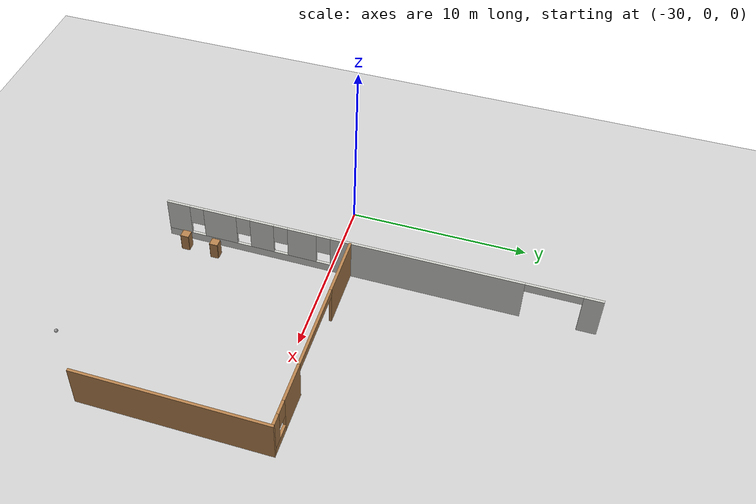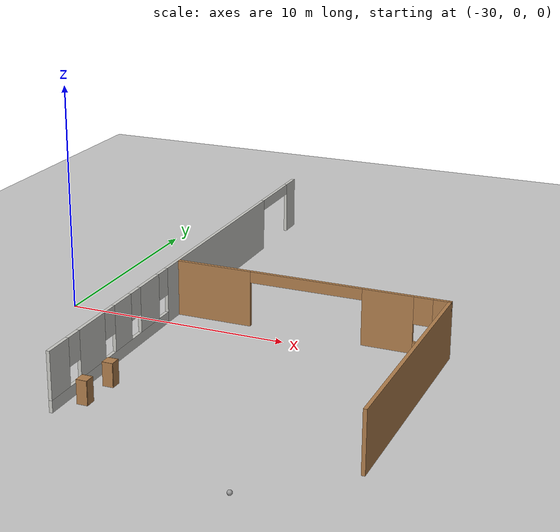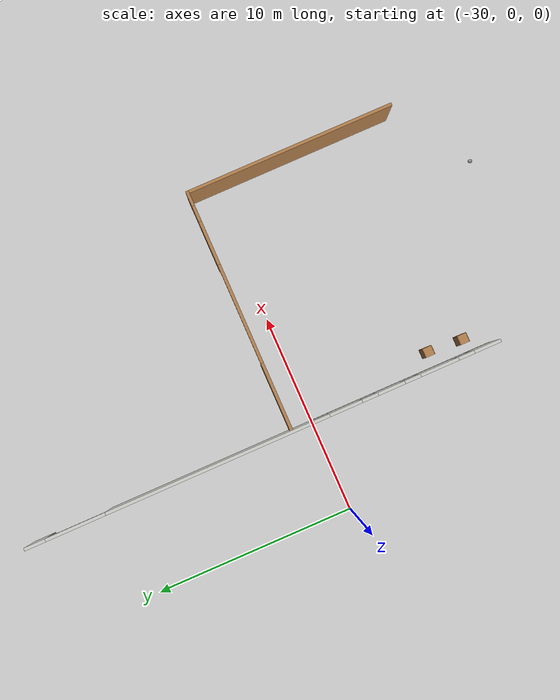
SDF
<sdf version="1.6">
 <world name="default">
  <model name="ground_plane">
   <static>1</static>
   <link name="link">
    <collision name="collision">
     <geometry><plane><normal>0 0 1</normal><size>100 100</size></plane></geometry>
     <surface>
      <contact><collide_bitmask>65535</collide_bitmask></contact>
      <friction><ode><mu>100</mu><mu2>50</mu2></ode></friction>
     </surface>
    </collision>
    <visual name="visual">
     <cast_shadows>0</cast_shadows>
     <geometry><plane><normal>0 0 1</normal><size>100 100</size></plane></geometry>
     <material>
      <script><uri>file://media/materials/scripts/gazebo.material</uri><name>Gazebo/Grey</name></script>
     </material>
    </visual>
   </link>
  </model>
  <model name="bigHouse">
   <pose>-26.8831 -3.8622 0 0 -0 0</pose>
   <link name="Wall_10">
    <pose>7.59462 4.97423 0 0 -0 0</pose>
    <visual name="Wall_10_Visual_0">
     <pose>-4.3849 0 1.25 0 -0 0</pose>
     <geometry><box><size>3.48019 0.15 2.5</size></box></geometry>
     <material>
      <script><uri>file://media/materials/scripts/gazebo.material</uri><name>Gazebo/Wood</name></script>
      <ambient>1 1 1 1</ambient>
     </material>
     <meta><layer>0</layer></meta>
    </visual>
    <collision name="Wall_10_Collision_0">
     <geometry><box><size>3.48019 0.15 2.5</size></box></geometry>
     <pose>-4.3849 0 1.25 0 -0 0</pose>
    </collision>
    <visual name="Wall_10_Visual_1">
     <pose>3.45765 0 1.25 0 -0 0</pose>
     <geometry><box><size>2.20491 0.15 2.5</size></box></geometry>
     <material>
      <script><uri>file://media/materials/scripts/gazebo.material</uri><name>Gazebo/Wood</name></script>
      <ambient>1 1 1 1</ambient>
     </material>
     <meta><layer>0</layer></meta>
    </visual>
    <collision name="Wall_10_Collision_1">
     <geometry><box><size>2.20491 0.15 2.5</size></box></geometry>
     <pose>3.45765 0 1.25 0 -0 0</pose>
    </collision>
    <visual name="Wall_10_Visual_2">
     <pose>5.34255 0 0.25 0 -0 0</pose>
     <geometry><box><size>1.56489 0.15 0.5</size></box></geometry>
     <material>
      <script><uri>file://media/materials/scripts/gazebo.material</uri><name>Gazebo/Wood</name></script>
      <ambient>1 1 1 1</ambient>
     </material>
     <meta><layer>0</layer></meta>
    </visual>
    <collision name="Wall_10_Collision_2">
     <geometry><box><size>1.56489 0.15 0.5</size></box></geometry>
     <pose>5.34255 0 0.25 0 -0 0</pose>
    </collision>
    <visual name="Wall_10_Visual_3">
     <pose>5.74255 0 1.5 0 -0 0</pose>
     <geometry><box><size>0.764895 0.15 2</size></box></geometry>
     <material>
      <script><uri>file://media/materials/scripts/gazebo.material</uri><name>Gazebo/Wood</name></script>
      <ambient>1 1 1 1</ambient>
     </material>
     <meta><layer>0</layer></meta>
    </visual>
    <collision name="Wall_10_Collision_3">
     <geometry><box><size>0.764895 0.15 2</size></box></geometry>
     <pose>5.74255 0 1.5 0 -0 0</pose>
    </collision>
    <visual name="Wall_10_Visual_4">
     <pose>4.96011 0 1.9 0 -0 0</pose>
     <geometry><box><size>0.8 0.15 1.2</size></box></geometry>
     <material>
      <script><uri>file://media/materials/scripts/gazebo.material</uri><name>Gazebo/Wood</name></script>
      <ambient>1 1 1 1</ambient>
     </material>
     <meta><layer>0</layer></meta>
    </visual>
    <collision name="Wall_10_Collision_4">
     <geometry><box><size>0.8 0.15 1.2</size></box></geometry>
     <pose>4.96011 0 1.9 0 -0 0</pose>
    </collision>
    <visual name="Wall_10_Visual_5">
     <pose>-0.144808 0 2.25 0 -0 0</pose>
     <geometry><box><size>5 0.15 0.5</size></box></geometry>
     <material>
      <script><uri>file://media/materials/scripts/gazebo.material</uri><name>Gazebo/Wood</name></script>
      <ambient>1 1 1 1</ambient>
     </material>
     <meta><layer>0</layer></meta>
    </visual>
    <collision name="Wall_10_Collision_5">
     <geometry><box><size>5 0.15 0.5</size></box></geometry>
     <pose>-0.144808 0 2.25 0 -0 0</pose>
    </collision>
   </link>
   <link name="Wall_11">
    <collision name="Wall_11_Collision">
     <geometry><box><size>10.5 0.15 2.5</size></box></geometry>
     <pose>0 0 1.25 0 -0 0</pose>
    </collision>
    <visual name="Wall_11_Visual">
     <pose>0 0 1.25 0 -0 0</pose>
     <geometry><box><size>10.5 0.15 2.5</size></box></geometry>
     <material>
      <script><uri>file://media/materials/scripts/gazebo.material</uri><name>Gazebo/Wood</name></script>
      <ambient>1 1 1 1</ambient>
     </material>
     <meta><layer>0</layer></meta>
    </visual>
    <pose>13.6446 -0.200766 0 0 0 -1.5708</pose>
   </link>
   <link name="Wall_5">
    <pose>1.4822 6.41248 0 0 0 -1.5708</pose>
    <visual name="Wall_5_Visual_0">
     <pose>-11.473 0 1.25 0 -0 0</pose>
     <geometry><box><size>1.05401 0.15 2.5</size></box></geometry>
     <material>
      <script><uri>file://media/materials/scripts/gazebo.material</uri><name>Gazebo/CeilingTiled</name></script>
      <ambient>1 1 1 1</ambient>
     </material>
     <meta><layer>0</layer></meta>
    </visual>
    <collision name="Wall_5_Collision_0">
     <geometry><box><size>1.05401 0.15 2.5</size></box></geometry>
     <pose>-11.473 0 1.25 0 -0 0</pose>
    </collision>
    <visual name="Wall_5_Visual_1">
     <pose>-2.70453 0 1.25 0 -0 0</pose>
     <geometry><box><size>10.4829 0.15 2.5</size></box></geometry>
     <material>
      <script><uri>file://media/materials/scripts/gazebo.material</uri><name>Gazebo/CeilingTiled</name></script>
      <ambient>1 1 1 1</ambient>
     </material>
     <meta><layer>0</layer></meta>
    </visual>
    <collision name="Wall_5_Collision_1">
     <geometry><box><size>10.4829 0.15 2.5</size></box></geometry>
     <pose>-2.70453 0 1.25 0 -0 0</pose>
    </collision>
    <visual name="Wall_5_Visual_2">
     <pose>7.26847 0 0.25 0 -0 0</pose>
     <geometry><box><size>9.46307 0.15 0.5</size></box></geometry>
     <material>
      <script><uri>file://media/materials/scripts/gazebo.material</uri><name>Gazebo/CeilingTiled</name></script>
      <ambient>1 1 1 1</ambient>
     </material>
     <meta><layer>0</layer></meta>
    </visual>
    <collision name="Wall_5_Collision_2">
     <geometry><box><size>9.46307 0.15 0.5</size></box></geometry>
     <pose>7.26847 0 0.25 0 -0 0</pose>
    </collision>
    <visual name="Wall_5_Visual_3">
     <pose>4.15646 0 1.5 0 -0 0</pose>
     <geometry><box><size>1.63906 0.15 2</size></box></geometry>
     <material>
      <script><uri>file://media/materials/scripts/gazebo.material</uri><name>Gazebo/CeilingTiled</name></script>
      <ambient>1 1 1 1</ambient>
     </material>
     <meta><layer>0</layer></meta>
    </visual>
    <collision name="Wall_5_Collision_3">
     <geometry><box><size>1.63906 0.15 2</size></box></geometry>
     <pose>4.15646 0 1.5 0 -0 0</pose>
    </collision>
    <visual name="Wall_5_Visual_4">
     <pose>6.45481 0 1.5 0 -0 0</pose>
     <geometry><box><size>1.35763 0.15 2</size></box></geometry>
     <material>
      <script><uri>file://media/materials/scripts/gazebo.material</uri><name>Gazebo/CeilingTiled</name></script>
      <ambient>1 1 1 1</ambient>
     </material>
     <meta><layer>0</layer></meta>
    </visual>
    <collision name="Wall_5_Collision_4">
     <geometry><box><size>1.35763 0.15 2</size></box></geometry>
     <pose>6.45481 0 1.5 0 -0 0</pose>
    </collision>
    <visual name="Wall_5_Visual_5">
     <pose>8.89387 0 1.5 0 -0 0</pose>
     <geometry><box><size>1.92049 0.15 2</size></box></geometry>
     <material>
      <script><uri>file://media/materials/scripts/gazebo.material</uri><name>Gazebo/CeilingTiled</name></script>
      <ambient>1 1 1 1</ambient>
     </material>
     <meta><layer>0</layer></meta>
    </visual>
    <collision name="Wall_5_Collision_5">
     <geometry><box><size>1.92049 0.15 2</size></box></geometry>
     <pose>8.89387 0 1.5 0 -0 0</pose>
    </collision>
    <visual name="Wall_5_Visual_6">
     <pose>11.3271 0 1.5 0 -0 0</pose>
     <geometry><box><size>1.34588 0.15 2</size></box></geometry>
     <material>
      <script><uri>file://media/materials/scripts/gazebo.material</uri><name>Gazebo/CeilingTiled</name></script>
      <ambient>1 1 1 1</ambient>
     </material>
     <meta><layer>0</layer></meta>
    </visual>
    <collision name="Wall_5_Collision_6">
     <geometry><box><size>1.34588 0.15 2</size></box></geometry>
     <pose>11.3271 0 1.5 0 -0 0</pose>
    </collision>
    <visual name="Wall_5_Visual_7">
     <pose>2.93693 0 1.9 0 -0 0</pose>
     <geometry><box><size>0.8 0.15 1.2</size></box></geometry>
     <material>
      <script><uri>file://media/materials/scripts/gazebo.material</uri><name>Gazebo/CeilingTiled</name></script>
      <ambient>1 1 1 1</ambient>
     </material>
     <meta><layer>0</layer></meta>
    </visual>
    <collision name="Wall_5_Collision_7">
     <geometry><box><size>0.8 0.15 1.2</size></box></geometry>
     <pose>2.93693 0 1.9 0 -0 0</pose>
    </collision>
    <visual name="Wall_5_Visual_8">
     <pose>5.37599 0 1.9 0 -0 0</pose>
     <geometry><box><size>0.8 0.15 1.2</size></box></geometry>
     <material>
      <script><uri>file://media/materials/scripts/gazebo.material</uri><name>Gazebo/CeilingTiled</name></script>
      <ambient>1 1 1 1</ambient>
     </material>
     <meta><layer>0</layer></meta>
    </visual>
    <collision name="Wall_5_Collision_8">
     <geometry><box><size>0.8 0.15 1.2</size></box></geometry>
     <pose>5.37599 0 1.9 0 -0 0</pose>
    </collision>
    <visual name="Wall_5_Visual_9">
     <pose>7.53362 0 1.9 0 -0 0</pose>
     <geometry><box><size>0.8 0.15 1.2</size></box></geometry>
     <material>
      <script><uri>file://media/materials/scripts/gazebo.material</uri><name>Gazebo/CeilingTiled</name></script>
      <ambient>1 1 1 1</ambient>
     </material>
     <meta><layer>0</layer></meta>
    </visual>
    <collision name="Wall_5_Collision_9">
     <geometry><box><size>0.8 0.15 1.2</size></box></geometry>
     <pose>7.53362 0 1.9 0 -0 0</pose>
    </collision>
    <visual name="Wall_5_Visual_10">
     <pose>10.2541 0 1.9 0 -0 0</pose>
     <geometry><box><size>0.8 0.15 1.2</size></box></geometry>
     <material>
      <script><uri>file://media/materials/scripts/gazebo.material</uri><name>Gazebo/CeilingTiled</name></script>
      <ambient>1 1 1 1</ambient>
     </material>
     <meta><layer>0</layer></meta>
    </visual>
    <collision name="Wall_5_Collision_10">
     <geometry><box><size>0.8 0.15 1.2</size></box></geometry>
     <pose>10.2541 0 1.9 0 -0 0</pose>
    </collision>
    <visual name="Wall_5_Visual_11">
     <pose>-9.44599 0 2.25 0 -0 0</pose>
     <geometry><box><size>3 0.15 0.5</size></box></geometry>
     <material>
      <script><uri>file://media/materials/scripts/gazebo.material</uri><name>Gazebo/CeilingTiled</name></script>
      <ambient>1 1 1 1</ambient>
     </material>
     <meta><layer>0</layer></meta>
    </visual>
    <collision name="Wall_5_Collision_11">
     <geometry><box><size>3 0.15 0.5</size></box></geometry>
     <pose>-9.44599 0 2.25 0 -0 0</pose>
    </collision>
   </link>
   <static>1</static>
  </model>
  <model name="cabinet">
   <static>1</static>
   <link name="cabinet_bottom_plate">
    <inertial>
     <pose>0 0 -1 0 -0 0</pose>
     <inertia><ixx>2.05</ixx><ixy>0</ixy><ixz>0</ixz><iyy>2.05</iyy><iyz>0</iyz><izz>2.05</izz></inertia>
     <mass>25</mass>
    </inertial>
    <collision name="cabinet_bottom_plate_geom">
     <pose>0 0 0.01 0 -0 0</pose>
     <geometry><box><size>0.45 0.45 0.02</size></box></geometry>
    </collision>
    <visual name="cabinet_bottom_plate_geom_visual">
     <pose>0 0 0.01 0 -0 0</pose>
     <geometry><box><size>0.45 0.45 0.02</size></box></geometry>
     <material>
      <script><uri>file://media/materials/scripts/gazebo.material</uri><name>Gazebo/Wood</name></script>
     </material>
    </visual>
    <collision name="cabinet_bottom_plate_geom_cabinet_back_plate">
     <pose>0.235 0 0.51 0 -0 0</pose>
     <geometry><box><size>0.02 0.45 1.02</size></box></geometry>
    </collision>
    <visual name="cabinet_bottom_plate_geom_cabinet_back_plate_visual">
     <pose>0.235 0 0.51 0 -0 0</pose>
     <geometry><box><size>0.02 0.45 1.02</size></box></geometry>
     <material>
      <script><uri>file://media/materials/scripts/gazebo.material</uri><name>Gazebo/Wood</name></script>
     </material>
    </visual>
    <collision name="cabinet_bottom_plate_geom_cabinet_left_plate">
     <pose>0 0.235 0.51 0 -0 0</pose>
     <geometry><box><size>0.45 0.02 1.02</size></box></geometry>
    </collision>
    <visual name="cabinet_bottom_plate_geom_cabinet_left_plate_visual">
     <pose>0 0.235 0.51 0 -0 0</pose>
     <geometry><box><size>0.45 0.02 1.02</size></box></geometry>
     <material>
      <script><uri>file://media/materials/scripts/gazebo.material</uri><name>Gazebo/Wood</name></script>
     </material>
    </visual>
    <collision name="cabinet_bottom_plate_geom_cabinet_middle_plate">
     <pose>0 0 0.51 0 -0 0</pose>
     <geometry><box><size>0.45 0.45 0.02</size></box></geometry>
    </collision>
    <visual name="cabinet_bottom_plate_geom_cabinet_middle_plate_visual">
     <pose>0 0 0.51 0 -0 0</pose>
     <geometry><box><size>0.45 0.45 0.02</size></box></geometry>
     <material>
      <script><uri>file://media/materials/scripts/gazebo.material</uri><name>Gazebo/Wood</name></script>
     </material>
    </visual>
    <collision name="cabinet_bottom_plate_geom_cabinet_right_plate">
     <pose>0 -0.235 0.51 0 -0 0</pose>
     <geometry><box><size>0.45 0.02 1.02</size></box></geometry>
    </collision>
    <visual name="cabinet_bottom_plate_geom_cabinet_right_plate_visual">
     <pose>0 -0.235 0.51 0 -0 0</pose>
     <geometry><box><size>0.45 0.02 1.02</size></box></geometry>
     <material>
      <script><uri>file://media/materials/scripts/gazebo.material</uri><name>Gazebo/Wood</name></script>
     </material>
    </visual>
    <collision name="cabinet_bottom_plate_geom_cabinet_top_plate">
     <pose>0 0 1.01 0 -0 0</pose>
     <geometry><box><size>0.45 0.45 0.02</size></box></geometry>
    </collision>
    <visual name="cabinet_bottom_plate_geom_cabinet_top_plate_visual">
     <pose>0 0 1.01 0 -0 0</pose>
     <geometry><box><size>0.45 0.45 0.02</size></box></geometry>
     <material>
      <script><uri>file://media/materials/scripts/gazebo.material</uri><name>Gazebo/Wood</name></script>
     </material>
    </visual>
   </link>
   <pose>-24.6708 -8.18589 0 0 -0 0</pose>
  </model>
  <model name="cabinet_0">
   <static>1</static>
   <link name="cabinet_bottom_plate">
    <inertial>
     <pose>0 0 -1 0 -0 0</pose>
     <inertia><ixx>2.05</ixx><ixy>0</ixy><ixz>0</ixz><iyy>2.05</iyy><iyz>0</iyz><izz>2.05</izz></inertia>
     <mass>25</mass>
    </inertial>
    <collision name="cabinet_bottom_plate_geom">
     <pose>0 0 0.01 0 -0 0</pose>
     <geometry><box><size>0.45 0.45 0.02</size></box></geometry>
    </collision>
    <visual name="cabinet_bottom_plate_geom_visual">
     <pose>0 0 0.01 0 -0 0</pose>
     <geometry><box><size>0.45 0.45 0.02</size></box></geometry>
     <material>
      <script><uri>file://media/materials/scripts/gazebo.material</uri><name>Gazebo/Wood</name></script>
     </material>
    </visual>
    <collision name="cabinet_bottom_plate_geom_cabinet_back_plate">
     <pose>0.235 0 0.51 0 -0 0</pose>
     <geometry><box><size>0.02 0.45 1.02</size></box></geometry>
    </collision>
    <visual name="cabinet_bottom_plate_geom_cabinet_back_plate_visual">
     <pose>0.235 0 0.51 0 -0 0</pose>
     <geometry><box><size>0.02 0.45 1.02</size></box></geometry>
     <material>
      <script><uri>file://media/materials/scripts/gazebo.material</uri><name>Gazebo/Wood</name></script>
     </material>
    </visual>
    <collision name="cabinet_bottom_plate_geom_cabinet_left_plate">
     <pose>0 0.235 0.51 0 -0 0</pose>
     <geometry><box><size>0.45 0.02 1.02</size></box></geometry>
    </collision>
    <visual name="cabinet_bottom_plate_geom_cabinet_left_plate_visual">
     <pose>0 0.235 0.51 0 -0 0</pose>
     <geometry><box><size>0.45 0.02 1.02</size></box></geometry>
     <material>
      <script><uri>file://media/materials/scripts/gazebo.material</uri><name>Gazebo/Wood</name></script>
     </material>
    </visual>
    <collision name="cabinet_bottom_plate_geom_cabinet_middle_plate">
     <pose>0 0 0.51 0 -0 0</pose>
     <geometry><box><size>0.45 0.45 0.02</size></box></geometry>
    </collision>
    <visual name="cabinet_bottom_plate_geom_cabinet_middle_plate_visual">
     <pose>0 0 0.51 0 -0 0</pose>
     <geometry><box><size>0.45 0.45 0.02</size></box></geometry>
     <material>
      <script><uri>file://media/materials/scripts/gazebo.material</uri><name>Gazebo/Wood</name></script>
     </material>
    </visual>
    <collision name="cabinet_bottom_plate_geom_cabinet_right_plate">
     <pose>0 -0.235 0.51 0 -0 0</pose>
     <geometry><box><size>0.45 0.02 1.02</size></box></geometry>
    </collision>
    <visual name="cabinet_bottom_plate_geom_cabinet_right_plate_visual">
     <pose>0 -0.235 0.51 0 -0 0</pose>
     <geometry><box><size>0.45 0.02 1.02</size></box></geometry>
     <material>
      <script><uri>file://media/materials/scripts/gazebo.material</uri><name>Gazebo/Wood</name></script>
     </material>
    </visual>
    <collision name="cabinet_bottom_plate_geom_cabinet_top_plate">
     <pose>0 0 1.01 0 -0 0</pose>
     <geometry><box><size>0.45 0.45 0.02</size></box></geometry>
    </collision>
    <visual name="cabinet_bottom_plate_geom_cabinet_top_plate_visual">
     <pose>0 0 1.01 0 -0 0</pose>
     <geometry><box><size>0.45 0.45 0.02</size></box></geometry>
     <material>
      <script><uri>file://media/materials/scripts/gazebo.material</uri><name>Gazebo/Wood</name></script>
     </material>
    </visual>
   </link>
   <pose>-24.5624 -6.41836 0 0 -0 0</pose>
  </model>
  <model name="my_ball">
   <link name="link_0">
    <inertial>
     <mass>1</mass>
     <inertia><ixx>0.1</ixx><ixy>0</ixy><ixz>0</ixz><iyy>0.1</iyy><iyz>0</iyz><izz>0.1</izz></inertia>
    </inertial>
    <visual name="visual">
     <geometry><sphere><radius>0.1</radius></sphere></geometry>
     <material>
      <lighting>1</lighting>
      <script><uri>file://media/materials/scripts/gazebo.material</uri><name>Gazebo/Grey</name></script>
      <shader type="pixel"><normal_map>__default__</normal_map></shader>
      <ambient>1 1 1 1</ambient>
      <diffuse>1 1 1 1</diffuse>
      <specular>1 1 1 1</specular>
      <emissive>1 1 1 1</emissive>
     </material>
    </visual>
    <collision name="collision">
     <geometry><sphere><radius>0.1</radius></sphere></geometry>
     <surface>
      <friction>
       <ode><mu>1</mu><mu2>1</mu2><fdir1>0 0 0</fdir1><slip1>0</slip1><slip2>0</slip2></ode>
       <torsional>
        <coefficient>1</coefficient>
        <patch_radius>0</patch_radius>
        <surface_radius>0</surface_radius>
        <use_patch_radius>1</use_patch_radius>
        <ode><slip>0</slip></ode>
       </torsional>
      </friction>
      <bounce><restitution_coefficient>0</restitution_coefficient><threshold>1e+06</threshold></bounce>
      <contact>
       <collide_without_contact>0</collide_without_contact>
       <collide_without_contact_bitmask>1</collide_without_contact_bitmask>
       <collide_bitmask>1</collide_bitmask>
       <ode>
        <soft_cfm>0</soft_cfm>
        <soft_erp>0.2</soft_erp>
        <kp>1e+13</kp>
        <kd>1</kd>
        <max_vel>0.01</max_vel>
        <min_depth>0</min_depth>
       </ode>
       <bullet>
        <split_impulse>1</split_impulse>
        <split_impulse_penetration_threshold>-0.01</split_impulse_penetration_threshold>
        <soft_cfm>0</soft_cfm>
        <soft_erp>0.2</soft_erp>
        <kp>1e+13</kp>
        <kd>1</kd>
       </bullet>
      </contact>
     </surface>
    </collision>
   </link>
   <static>0</static>
   <pose>-16.8332 -12.268 0.1 0 -0 0</pose>
  </model>
 </world>
</sdf>
